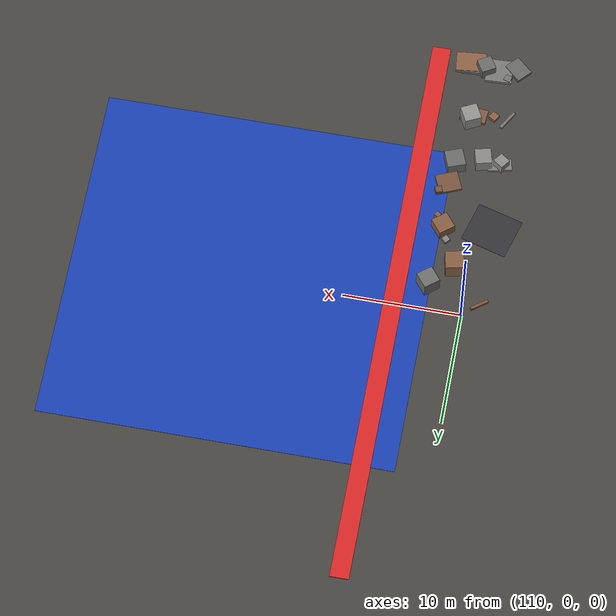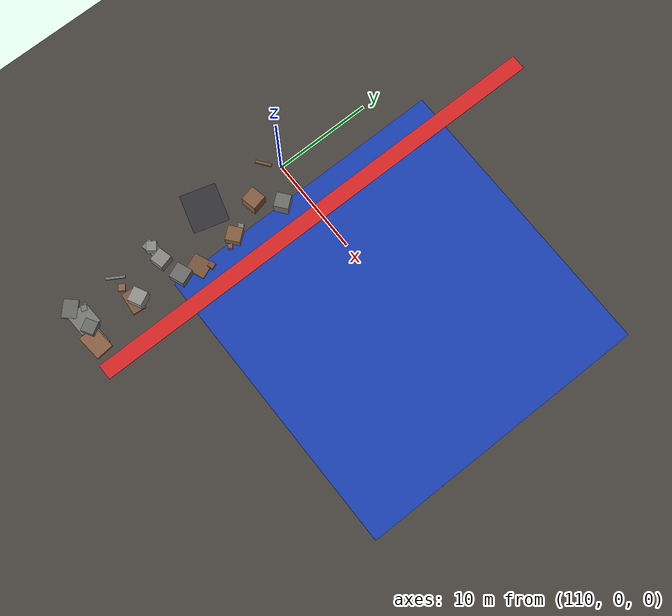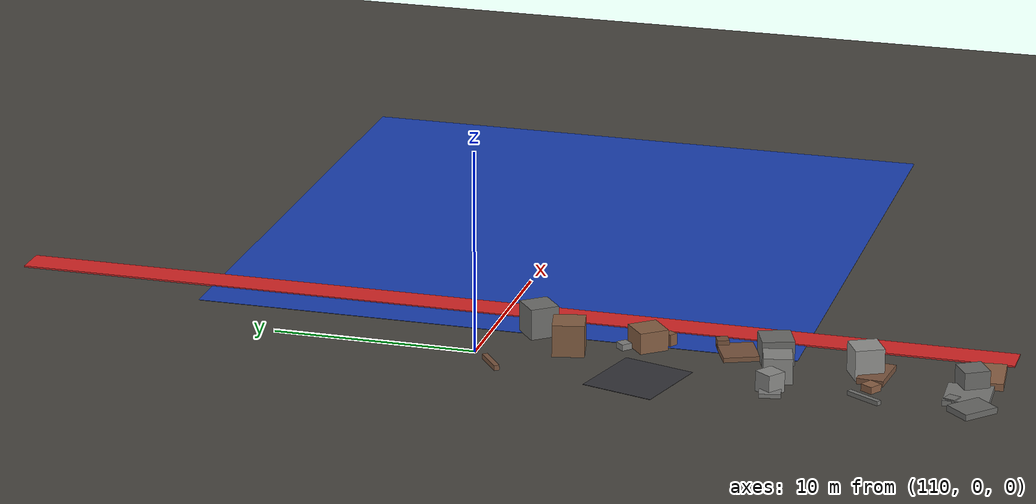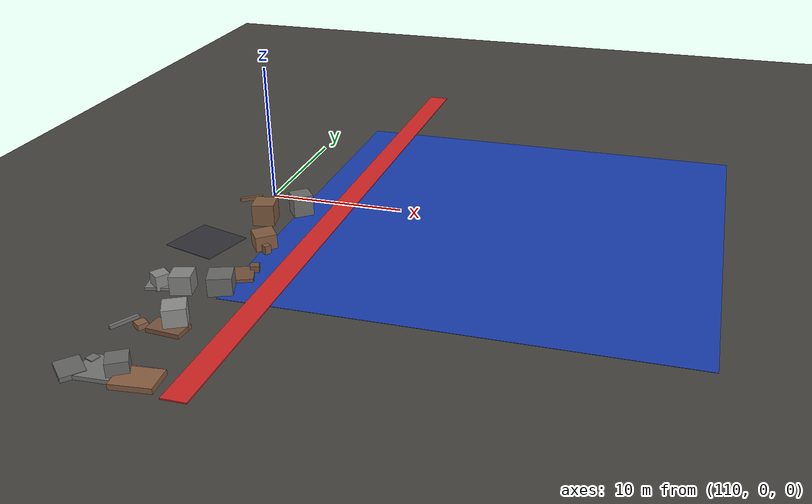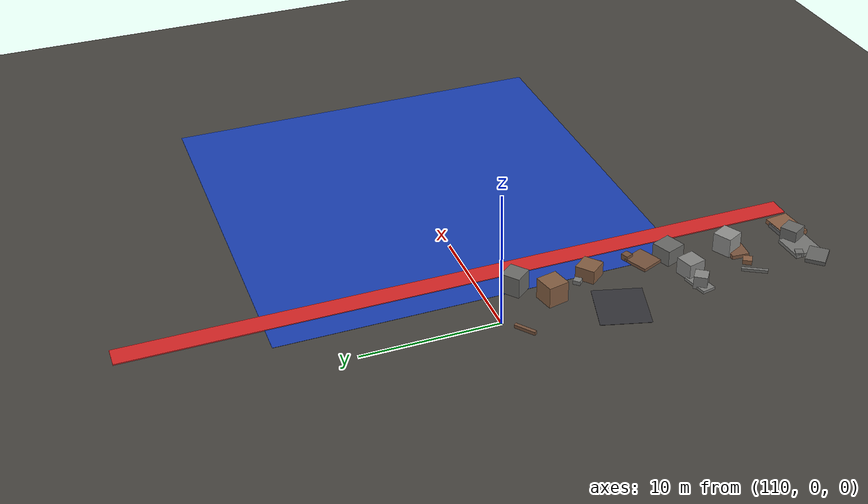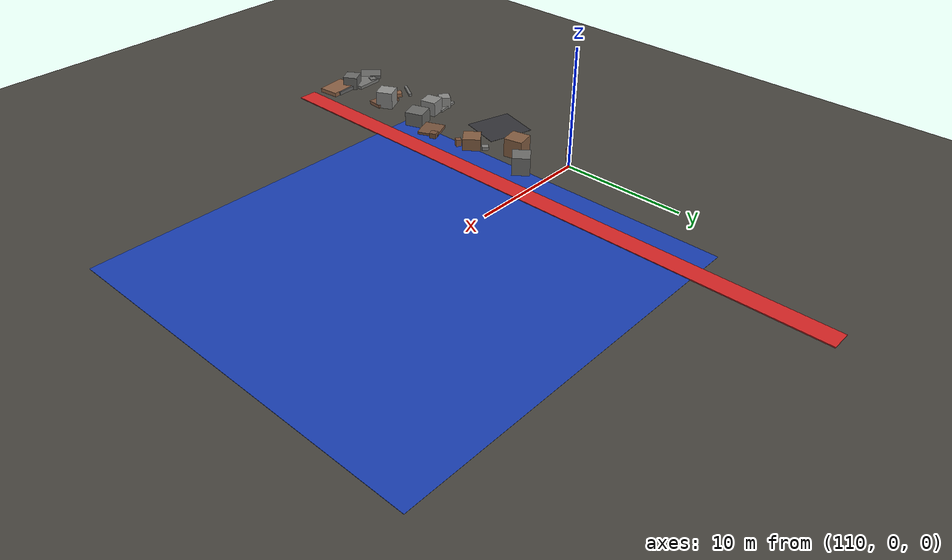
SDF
<sdf version="1.6">
 <world name="navitas_arena">
  <model name="ground_plane">
   <static>true</static>
   <link name="link">
    <collision name="collision">
     <geometry><plane><normal>0 0 1</normal><size>400 400</size></plane></geometry>
     <surface><friction><ode><mu>0.820</mu><mu2>0.820</mu2></ode></friction></surface>
    </collision>
    <visual name="visual">
     <cast_shadows>false</cast_shadows>
     <geometry><plane><normal>0 0 1</normal><size>400 400</size></plane></geometry>
     <material><ambient>0.280 0.270 0.250 1</ambient><diffuse>0.280 0.270 0.250 1</diffuse></material>
    </visual>
   </link>
  </model>
  <model name="landing">
   <static>true</static>
   <pose>128.000 0.000 0.010 0 0 0.000</pose>
   <link name="link">
    <collision name="col"><geometry><box><size>30.000 30.000 0.020</size></box></geometry></collision>
    <visual name="vis">
     <geometry><box><size>30.000 30.000 0.020</size></box></geometry>
     <material><ambient>0.10 0.25 0.70 1</ambient><diffuse>0.10 0.25 0.70 1</diffuse></material>
    </visual>
   </link>
  </model>
  <model name="brd_zor_E">
   <static>true</static>
   <pose>115.800 0.000 0.040 0 0 0.000</pose>
   <link name="link">
    <collision name="col"><geometry><box><size>1.600 50.000 0.080</size></box></geometry></collision>
    <visual name="vis">
     <geometry><box><size>1.600 50.000 0.080</size></box></geometry>
     <material><ambient>0.85 0.15 0.15 1</ambient><diffuse>0.85 0.15 0.15 1</diffuse></material>
    </visual>
   </link>
  </model>
  <model name="road_zor_3_9">
   <static>true</static>
   <pose>108.745 -8.302 0.040 0 0 1.292</pose>
   <link name="link">
    <collision name="col"><geometry><box><size>3.608 4.000 0.020</size></box></geometry></collision>
    <visual name="vis">
     <geometry><box><size>3.608 4.000 0.020</size></box></geometry>
     <material><ambient>0.20 0.20 0.22 1</ambient><diffuse>0.20 0.20 0.22 1</diffuse></material>
    </visual>
   </link>
  </model>
  <model name="deb_zor_22">
   <static>true</static>
   <pose>113.083 -23.951 0.176 0 0 0.095</pose>
   <link name="link">
    <collision name="col"><geometry><box><size>2.563 1.793 0.351</size></box></geometry></collision>
    <visual name="vis">
     <geometry><box><size>2.563 1.793 0.351</size></box></geometry>
     <material><ambient>0.55 0.38 0.27 1</ambient><diffuse>0.55 0.38 0.27 1</diffuse></material>
    </visual>
   </link>
  </model>
  <model name="deb_zor_30">
   <static>true</static>
   <pose>111.304 -4.272 0.789 0 0 1.783</pose>
   <link name="link">
    <collision name="col"><geometry><box><size>1.560 1.560 1.578</size></box></geometry></collision>
    <visual name="vis">
     <geometry><box><size>1.560 1.560 1.578</size></box></geometry>
     <material><ambient>0.52 0.37 0.26 1</ambient><diffuse>0.52 0.37 0.26 1</diffuse></material>
    </visual>
   </link>
  </model>
  <model name="deb_zor_33">
   <static>true</static>
   <pose>112.028 -18.948 0.144 0 0 3.053</pose>
   <link name="link">
    <collision name="col"><geometry><box><size>2.255 1.299 0.289</size></box></geometry></collision>
    <visual name="vis">
     <geometry><box><size>2.255 1.299 0.289</size></box></geometry>
     <material><ambient>0.49 0.34 0.25 1</ambient><diffuse>0.49 0.34 0.25 1</diffuse></material>
    </visual>
   </link>
  </model>
  <model name="deb_zor_41">
   <static>true</static>
   <pose>110.539 -14.555 0.632 0 0 0.247</pose>
   <link name="link">
    <collision name="col"><geometry><box><size>1.377 1.377 1.265</size></box></geometry></collision>
    <visual name="vis">
     <geometry><box><size>1.377 1.377 1.265</size></box></geometry>
     <material><ambient>0.53 0.53 0.52 1</ambient><diffuse>0.53 0.53 0.52 1</diffuse></material>
    </visual>
   </link>
  </model>
  <model name="deb_zor_57">
   <static>true</static>
   <pose>112.814 -23.062 0.153 0 0 0.059</pose>
   <link name="link">
    <collision name="col"><geometry><box><size>1.949 0.239 0.306</size></box></geometry></collision>
    <visual name="vis">
     <geometry><box><size>1.949 0.239 0.306</size></box></geometry>
     <material><ambient>0.40 0.40 0.40 1</ambient><diffuse>0.40 0.40 0.40 1</diffuse></material>
    </visual>
   </link>
  </model>
  <model name="deb_zor_65">
   <static>true</static>
   <pose>109.112 -18.937 0.108 0 0 1.028</pose>
   <link name="link">
    <collision name="col"><geometry><box><size>1.858 0.244 0.216</size></box></geometry></collision>
    <visual name="vis">
     <geometry><box><size>1.858 0.244 0.216</size></box></geometry>
     <material><ambient>0.45 0.45 0.44 1</ambient><diffuse>0.45 0.45 0.44 1</diffuse></material>
    </visual>
   </link>
  </model>
  <model name="deb_zor_100">
   <static>true</static>
   <pose>113.087 -12.103 0.117 0 0 0.399</pose>
   <link name="link">
    <collision name="col"><geometry><box><size>1.937 1.761 0.234</size></box></geometry></collision>
    <visual name="vis">
     <geometry><box><size>1.937 1.761 0.234</size></box></geometry>
     <material><ambient>0.47 0.33 0.24 1</ambient><diffuse>0.47 0.33 0.24 1</diffuse></material>
    </visual>
   </link>
  </model>
  <model name="deb_zor_103">
   <static>true</static>
   <pose>112.834 -7.763 0.519 0 0 2.245</pose>
   <link name="link">
    <collision name="col"><geometry><box><size>1.462 1.462 1.039</size></box></geometry></collision>
    <visual name="vis">
     <geometry><box><size>1.462 1.462 1.039</size></box></geometry>
     <material><ambient>0.52 0.37 0.26 1</ambient><diffuse>0.52 0.37 0.26 1</diffuse></material>
    </visual>
   </link>
  </model>
  <model name="deb_zor_105">
   <static>true</static>
   <pose>113.435 -8.717 0.305 0 0 1.019</pose>
   <link name="link">
    <collision name="col"><geometry><box><size>0.437 0.437 0.610</size></box></geometry></collision>
    <visual name="vis">
     <geometry><box><size>0.437 0.437 0.610</size></box></geometry>
     <material><ambient>0.51 0.35 0.25 1</ambient><diffuse>0.51 0.35 0.25 1</diffuse></material>
    </visual>
   </link>
  </model>
  <model name="deb_zor_106">
   <static>true</static>
   <pose>113.778 -11.176 0.232 0 0 0.371</pose>
   <link name="link">
    <collision name="col"><geometry><box><size>0.577 0.577 0.465</size></box></geometry></collision>
    <visual name="vis">
     <geometry><box><size>0.577 0.577 0.465</size></box></geometry>
     <material><ambient>0.46 0.32 0.23 1</ambient><diffuse>0.46 0.32 0.23 1</diffuse></material>
    </visual>
   </link>
  </model>
  <model name="deb_zor_107">
   <static>true</static>
   <pose>113.201 -2.280 0.768 0 0 0.671</pose>
   <link name="link">
    <collision name="col"><geometry><box><size>1.436 1.436 1.536</size></box></geometry></collision>
    <visual name="vis">
     <geometry><box><size>1.436 1.436 1.536</size></box></geometry>
     <material><ambient>0.43 0.43 0.42 1</ambient><diffuse>0.43 0.43 0.42 1</diffuse></material>
    </visual>
   </link>
  </model>
  <model name="deb_zor_116">
   <static>true</static>
   <pose>110.565 -23.548 0.133 0 0 0.045</pose>
   <link name="link">
    <collision name="col"><geometry><box><size>2.277 2.148 0.266</size></box></geometry></collision>
    <visual name="vis">
     <geometry><box><size>2.277 2.148 0.266</size></box></geometry>
     <material><ambient>0.47 0.47 0.46 1</ambient><diffuse>0.47 0.47 0.46 1</diffuse></material>
    </visual>
   </link>
  </model>
  <model name="deb_zor_134">
   <static>true</static>
   <pose>112.398 -6.696 0.154 0 0 2.373</pose>
   <link name="link">
    <collision name="col"><geometry><box><size>0.537 0.537 0.308</size></box></geometry></collision>
    <visual name="vis">
     <geometry><box><size>0.537 0.537 0.308</size></box></geometry>
     <material><ambient>0.50 0.50 0.49 1</ambient><diffuse>0.50 0.50 0.49 1</diffuse></material>
    </visual>
   </link>
  </model>
  <model name="deb_zor_138">
   <static>true</static>
   <pose>111.716 -23.537 0.553 0 0 2.102</pose>
   <link name="link">
    <collision name="col"><geometry><box><size>1.271 1.271 1.107</size></box></geometry></collision>
    <visual name="vis">
     <geometry><box><size>1.271 1.271 1.107</size></box></geometry>
     <material><ambient>0.42 0.42 0.41 1</ambient><diffuse>0.42 0.42 0.41 1</diffuse></material>
    </visual>
   </link>
  </model>
  <model name="deb_zor_142">
   <static>true</static>
   <pose>112.234 -18.403 0.738 0 0 2.043</pose>
   <link name="link">
    <collision name="col"><geometry><box><size>1.431 1.431 1.477</size></box></geometry></collision>
    <visual name="vis">
     <geometry><box><size>1.431 1.431 1.477</size></box></geometry>
     <material><ambient>0.57 0.57 0.56 1</ambient><diffuse>0.57 0.57 0.56 1</diffuse></material>
    </visual>
   </link>
  </model>
  <model name="deb_zor_148">
   <static>true</static>
   <pose>109.720 -22.935 0.166 0 0 1.224</pose>
   <link name="link">
    <collision name="col"><geometry><box><size>0.581 0.581 0.332</size></box></geometry></collision>
    <visual name="vis">
     <geometry><box><size>0.581 0.581 0.332</size></box></geometry>
     <material><ambient>0.45 0.45 0.44 1</ambient><diffuse>0.45 0.45 0.44 1</diffuse></material>
    </visual>
   </link>
  </model>
  <model name="deb_zor_153">
   <static>true</static>
   <pose>112.854 -13.978 0.610 0 0 0.357</pose>
   <link name="link">
    <collision name="col"><geometry><box><size>1.566 1.566 1.220</size></box></geometry></collision>
    <visual name="vis">
     <geometry><box><size>1.566 1.566 1.220</size></box></geometry>
     <material><ambient>0.42 0.42 0.41 1</ambient><diffuse>0.42 0.42 0.41 1</diffuse></material>
    </visual>
   </link>
  </model>
  <model name="deb_zor_194">
   <static>true</static>
   <pose>110.290 -19.038 0.173 0 0 0.997</pose>
   <link name="link">
    <collision name="col"><geometry><box><size>0.667 0.667 0.346</size></box></geometry></collision>
    <visual name="vis">
     <geometry><box><size>0.667 0.667 0.346</size></box></geometry>
     <material><ambient>0.55 0.38 0.27 1</ambient><diffuse>0.55 0.38 0.27 1</diffuse></material>
    </visual>
   </link>
  </model>
  <model name="deb_zor_213">
   <static>true</static>
   <pose>108.977 -23.993 0.150 0 0 2.393</pose>
   <link name="link">
    <collision name="col"><geometry><box><size>1.802 1.442 0.300</size></box></geometry></collision>
    <visual name="vis">
     <geometry><box><size>1.802 1.442 0.300</size></box></geometry>
     <material><ambient>0.41 0.41 0.40 1</ambient><diffuse>0.41 0.41 0.40 1</diffuse></material>
    </visual>
   </link>
  </model>
  <model name="deb_zor_226">
   <static>true</static>
   <pose>109.090 -14.527 0.101 0 0 0.204</pose>
   <link name="link">
    <collision name="col"><geometry><box><size>2.030 1.032 0.202</size></box></geometry></collision>
    <visual name="vis">
     <geometry><box><size>2.030 1.032 0.202</size></box></geometry>
     <material><ambient>0.49 0.49 0.48 1</ambient><diffuse>0.49 0.49 0.48 1</diffuse></material>
    </visual>
   </link>
  </model>
  <model name="deb_zor_227">
   <static>true</static>
   <pose>108.663 -1.163 0.127 0 0 0.636</pose>
   <link name="link">
    <collision name="col"><geometry><box><size>1.624 0.259 0.253</size></box></geometry></collision>
    <visual name="vis">
     <geometry><box><size>1.624 0.259 0.253</size></box></geometry>
     <material><ambient>0.47 0.33 0.24 1</ambient><diffuse>0.47 0.33 0.24 1</diffuse></material>
    </visual>
   </link>
  </model>
  <model name="chic_zor_1">
   <static>true</static>
   <pose>108.958 -14.541 0.500 0 0 0.934</pose>
   <link name="link">
    <collision name="col"><geometry><box><size>0.965 0.965 1.000</size></box></geometry></collision>
    <visual name="vis">
     <geometry><box><size>0.965 0.965 1.000</size></box></geometry>
     <material><ambient>0.54 0.54 0.53 1</ambient><diffuse>0.54 0.54 0.53 1</diffuse></material>
    </visual>
   </link>
  </model>
 </world>
</sdf>
